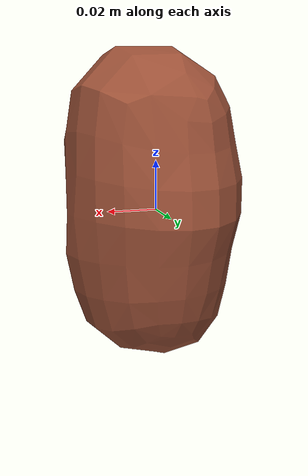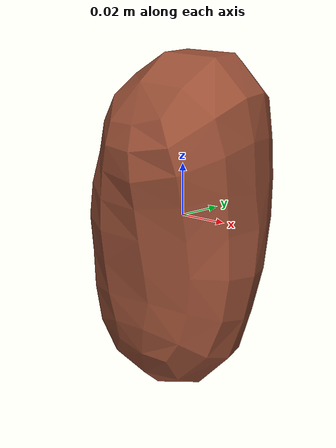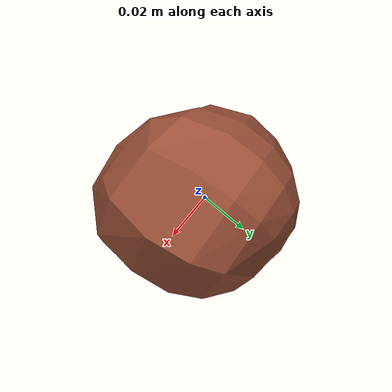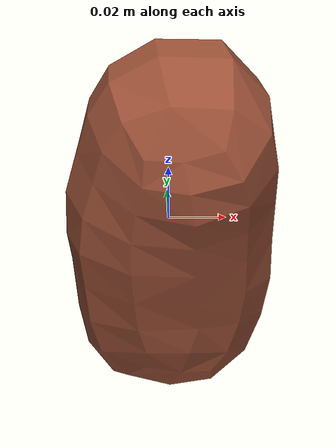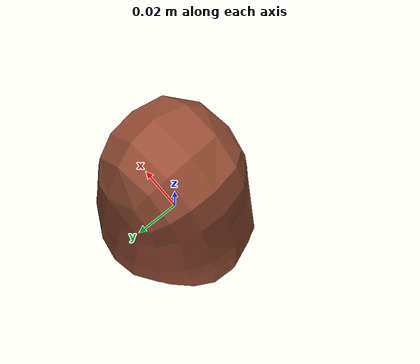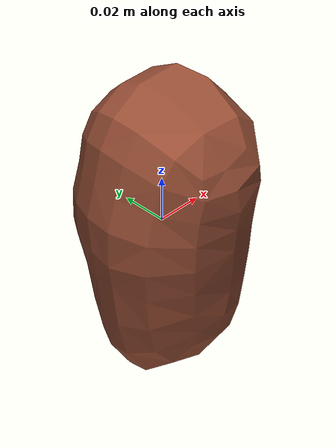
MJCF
<mujoco model="Potato_20">
  <compiler autolimits="true" boundmass="0.01" angle="radian"/>
  <default>
    <default class="/">
      <default class="__VISUAL_MJT__">
        <geom contype="0" conaffinity="0" group="0"/>
      </default>
      <default class="__STRUCTURAL_MJT__">
        <geom contype="8" conaffinity="15" group="4" friction="0.90000000000000002 0.90000000000000002 0.001" solref="0.025000000000000001 1" solimp="0.998 0.998 0.001"/>
      </default>
      <default class="__DYNAMIC_MJT__">
        <geom contype="1" conaffinity="15" group="4" friction="0.90000000000000002 0.90000000000000002 0.001" solref="0.025000000000000001 1" solimp="0.998 0.998 0.001"/>
      </default>
    </default>
  </default>
  <asset>
    <texture name="Potato2_Mat5" type="2d" file="Potato2_AlbedoTransparency.png"/>
    <material name="material_Potato2_Mat5" class="/" texture="Potato2_Mat5" specular="0.5" shininess="0.5" rgba="0.80147060000000003 0.4302011 0.309 1"/>
    <mesh name="Potato_20_potato_b10" class="/" file="Potato_20_potato_b10/Potato_20_potato_b10.obj" scale="1 1 1"/>
  </asset>
  <worldbody>
    <body name="Potato_20">
      <joint name="Potato_20_free" class="/" type="free" pos="0 0 0" axis="0 0 1" stiffness="0" range="0 0" armature="0" damping="0.10000000000000001" frictionloss="0"/>
      <body name="Potato_20_potato_b10" pos="0.00048000000000000001 -0.010689999926239252 0.0021900000225380063" quat="0.99837213754653931 -0.057036802172660828 0 0">
        <geom name="Potato_20_potato_b10" class="__VISUAL_MJT__" type="mesh" material="material_Potato2_Mat5" shellinertia="true" mesh="Potato_20_potato_b10"/>
        <geom name="Potato_20_PrimitiveCollider_0" class="__DYNAMIC_MJT__" type="capsule" size="0.035436481237411499 0.029950901865959167" rgba="0 1 0 1" pos="0.00047506392002105713 0.0048892484046518803 -0.0004876251332461834" quat="1.4751396609986736e-06 0.99999999999891198 0 0"/>
      </body>
    </body>
  </worldbody>
</mujoco>
